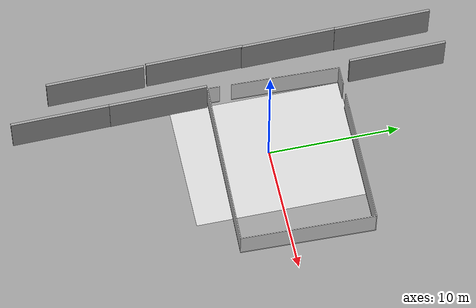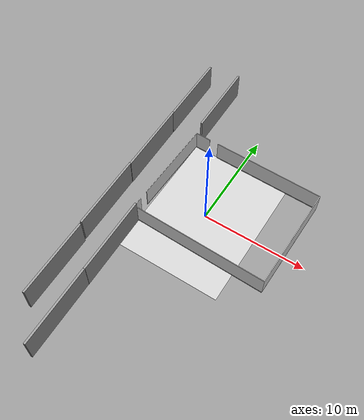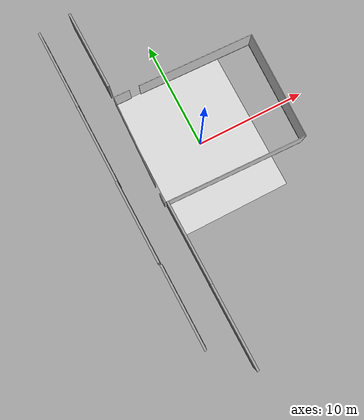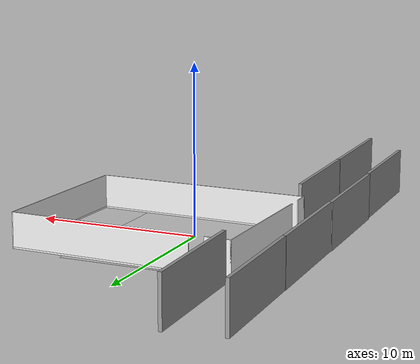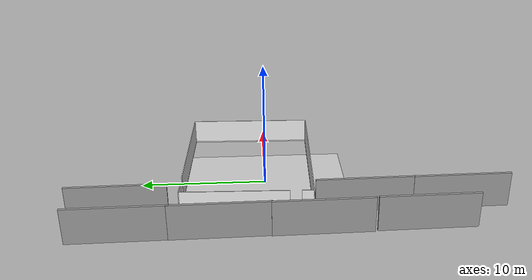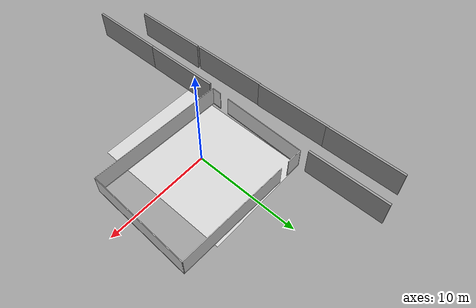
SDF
<sdf version="1.7">
 <world name="default">
  <gravity>0 0 -9.8</gravity>
  <magnetic_field>6e-06 2.3e-05 -4.2e-05</magnetic_field>
  <atmosphere type="adiabatic"/>
  <physics type="ode">
   <max_step_size>0.001</max_step_size>
   <real_time_factor>1</real_time_factor>
   <real_time_update_rate>1000</real_time_update_rate>
  </physics>
  <scene><ambient>0.4 0.4 0.4 1</ambient><background>0.7 0.7 0.7 1</background><shadows>1</shadows></scene>
  <spherical_coordinates>
   <surface_model>EARTH_WGS84</surface_model>
   <latitude_deg>0</latitude_deg>
   <longitude_deg>0</longitude_deg>
   <elevation>0</elevation>
   <heading_deg>0</heading_deg>
  </spherical_coordinates>
  <model name="gplane">
   <link name="body">
    <collision name="gplane_coll">
     <geometry><plane><normal>0 0 1</normal><size>10.075 13.18</size></plane></geometry>
     <surface><contact><ode><kp>1e+06</kp><kd>1</kd></ode></contact></surface>
     <laser_retro>2000</laser_retro>
    </collision>
    <visual name="gplane_vis">
     <geometry><plane><normal>0 0 1</normal><size>10.075 13.18</size></plane></geometry>
     <material>
      <script>
       <uri>model://base_materials/carpet/scripts</uri>
       <uri>model://base_materials/carpet/textures</uri>
       <name>carpet/carpet01</name>
      </script>
     </material>
     <cast_shadows>0</cast_shadows>
    </visual>
    <velocity_decay><linear>0</linear><angular>0</angular></velocity_decay>
   </link>
   <static>1</static>
  </model>
  <light name="inner_point_white1" type="point">
   <pose>4 5 4 0 -0 0</pose>
   <diffuse>0.2 0.2 0.2 1</diffuse>
   <specular>0.1 0.1 0.1 1</specular>
   <attenuation>
    <range>20</range>
    <linear>0.1</linear>
    <constant>0.2</constant>
    <quadratic>0</quadratic>
   </attenuation>
   <cast_shadows>0</cast_shadows>
   <direction>0 0 -1</direction>
   <spot><inner_angle>0</inner_angle><outer_angle>0</outer_angle><falloff>0</falloff></spot>
  </light>
  <light name="inner_point_white2" type="point">
   <pose>4 10 4 0 -0 0</pose>
   <diffuse>0.2 0.2 0.2 1</diffuse>
   <specular>0.1 0.1 0.1 1</specular>
   <attenuation>
    <range>20</range>
    <linear>0.1</linear>
    <constant>0.2</constant>
    <quadratic>0</quadratic>
   </attenuation>
   <cast_shadows>0</cast_shadows>
   <direction>0 0 -1</direction>
   <spot><inner_angle>0</inner_angle><outer_angle>0</outer_angle><falloff>0</falloff></spot>
  </light>
  <light name="inner_point_white3" type="point">
   <pose>8 5 4 0 -0 0</pose>
   <diffuse>0.2 0.2 0.2 1</diffuse>
   <specular>0.1 0.1 0.1 1</specular>
   <attenuation>
    <range>20</range>
    <linear>0.1</linear>
    <constant>0.2</constant>
    <quadratic>0</quadratic>
   </attenuation>
   <cast_shadows>0</cast_shadows>
   <direction>0 0 -1</direction>
   <spot><inner_angle>0</inner_angle><outer_angle>0</outer_angle><falloff>0</falloff></spot>
  </light>
  <light name="inner_point_white4" type="point">
   <pose>8 10 4 0 -0 0</pose>
   <diffuse>0.2 0.2 0.2 1</diffuse>
   <specular>0.1 0.1 0.1 1</specular>
   <attenuation>
    <range>20</range>
    <linear>0.1</linear>
    <constant>0.2</constant>
    <quadratic>0</quadratic>
   </attenuation>
   <cast_shadows>0</cast_shadows>
   <direction>0 0 -1</direction>
   <spot><inner_angle>0</inner_angle><outer_angle>0</outer_angle><falloff>0</falloff></spot>
  </light>
  <light name="inner_point_white5" type="point">
   <pose>4 5 4 0 -0 0</pose>
   <diffuse>0.2 0.2 0.2 1</diffuse>
   <specular>0.1 0.1 0.1 1</specular>
   <attenuation>
    <range>20</range>
    <linear>0.1</linear>
    <constant>0.2</constant>
    <quadratic>0</quadratic>
   </attenuation>
   <cast_shadows>0</cast_shadows>
   <direction>0 0 -1</direction>
   <spot><inner_angle>0</inner_angle><outer_angle>0</outer_angle><falloff>0</falloff></spot>
  </light>
  <light name="inner_point_white6" type="point">
   <pose>4 10 4 0 -0 0</pose>
   <diffuse>0.2 0.2 0.2 1</diffuse>
   <specular>0.1 0.1 0.1 1</specular>
   <attenuation>
    <range>20</range>
    <linear>0.1</linear>
    <constant>0.2</constant>
    <quadratic>0</quadratic>
   </attenuation>
   <cast_shadows>0</cast_shadows>
   <direction>0 0 -1</direction>
   <spot><inner_angle>0</inner_angle><outer_angle>0</outer_angle><falloff>0</falloff></spot>
  </light>
  <light name="inner_point_white7" type="point">
   <pose>8 5 4 0 -0 0</pose>
   <diffuse>0.2 0.2 0.2 1</diffuse>
   <specular>0.1 0.1 0.1 1</specular>
   <attenuation>
    <range>20</range>
    <linear>0.1</linear>
    <constant>0.2</constant>
    <quadratic>0</quadratic>
   </attenuation>
   <cast_shadows>0</cast_shadows>
   <direction>0 0 -1</direction>
   <spot><inner_angle>0</inner_angle><outer_angle>0</outer_angle><falloff>0</falloff></spot>
  </light>
  <light name="inner_point_white8" type="point">
   <pose>8 10 4 0 -0 0</pose>
   <diffuse>0.2 0.2 0.2 1</diffuse>
   <specular>0.1 0.1 0.1 1</specular>
   <attenuation>
    <range>20</range>
    <linear>0.1</linear>
    <constant>0.2</constant>
    <quadratic>0</quadratic>
   </attenuation>
   <cast_shadows>0</cast_shadows>
   <direction>0 0 -1</direction>
   <spot><inner_angle>0</inner_angle><outer_angle>0</outer_angle><falloff>0</falloff></spot>
  </light>
  <model name="full_outside_wall">
   <link name="link">
    <inertial>
     <mass>50</mass>
     <inertia><ixx>1</ixx><ixy>0</ixy><ixz>0</ixz><iyy>1</iyy><iyz>0</iyz><izz>1</izz></inertia>
    </inertial>
    <visual name="x00_13y00_bottom_frame">
     <pose>5.0375 -0.0275 0.05 0 -0 0</pose>
     <geometry><box><size>10.185 0.055 0.1</size></box></geometry>
     <material>
      <script><uri>model://base_materials/color/scripts</uri><name>hsr_color/white</name></script>
     </material>
    </visual>
    <collision name="x00_13y00_collision_bottom_frame">
     <pose>5.0375 -0.0275 0.05 0 -0 0</pose>
     <geometry><box><size>10.185 0.055 0.1</size></box></geometry>
    </collision>
    <visual name="wall_x00_13y00">
     <pose>5.0375 -0.0275 1.095 0 -0 0</pose>
     <geometry><box><size>10.185 0.055 1.99</size></box></geometry>
     <material>
      <script>
       <uri>model://base_materials/wall/scripts</uri>
       <uri>model://base_materials/wall/textures</uri>
       <name>wall/white_noise</name>
      </script>
     </material>
    </visual>
    <collision name="wall_x00_13y00">
     <pose>5.0375 -0.002 1.095 0 -0 0</pose>
     <geometry><box><size>10.08 0.055 1.99</size></box></geometry>
    </collision>
    <visual name="x00y00_15_bottom_frame">
     <pose>-0.0275 6.59 0.05 0 -0 0</pose>
     <geometry><box><size>0.055 13.29 0.1</size></box></geometry>
     <material>
      <script><uri>model://base_materials/color/scripts</uri><name>hsr_color/white</name></script>
     </material>
    </visual>
    <collision name="x00y00_15_collision_bottom_frame">
     <pose>-0.0275 6.59 0.05 0 -0 0</pose>
     <geometry><box><size>0.055 13.29 0.1</size></box></geometry>
    </collision>
    <visual name="wall_x00y00_15">
     <pose>-0.0275 6.59 1.095 0 -0 0</pose>
     <geometry><box><size>0.055 13.29 1.99</size></box></geometry>
     <material>
      <script>
       <uri>model://base_materials/wall/scripts</uri>
       <uri>model://base_materials/wall/textures</uri>
       <name>wall/white_noise</name>
      </script>
     </material>
    </visual>
    <collision name="wall_x00y00_x00y15">
     <pose>-0.002 6.59 1.095 0 -0 0</pose>
     <geometry><box><size>0.002 13.29 1.99</size></box></geometry>
    </collision>
    <visual name="x13y00_12_bottom_frame">
     <pose>10.1025 5.3725 0.05 0 -0 0</pose>
     <geometry><box><size>0.055 10.855 0.1</size></box></geometry>
     <material>
      <script><uri>model://base_materials/color/scripts</uri><name>hsr_color/white</name></script>
     </material>
    </visual>
    <collision name="x13y00_12_collision_bottom_frame">
     <pose>10.1025 5.3725 0.05 0 -0 0</pose>
     <geometry><box><size>0.055 10.855 0.1</size></box></geometry>
    </collision>
    <visual name="wall_x13y00_12">
     <pose>10.1025 5.3725 1.095 0 -0 0</pose>
     <geometry><box><size>0.055 10.855 1.99</size></box></geometry>
     <material>
      <script>
       <uri>model://base_materials/wall/scripts</uri>
       <uri>model://base_materials/wall/textures</uri>
       <name>wall/white_noise</name>
      </script>
     </material>
    </visual>
    <collision name="wall_x13y00_12">
     <pose>10.1025 5.3725 1.095 0 -0 0</pose>
     <geometry><box><size>0.055 10.855 1.99</size></box></geometry>
    </collision>
    <visual name="x13y14_16_bottom_frame">
     <pose>10.1025 12.4675 0.05 0 -0 0</pose>
     <geometry><box><size>0.055 1.535 0.1</size></box></geometry>
     <material>
      <script><uri>model://base_materials/color/scripts</uri><name>hsr_color/white</name></script>
     </material>
    </visual>
    <collision name="x13y14_16_collision_bottom_frame">
     <pose>10.1025 12.4675 0.05 0 -0 0</pose>
     <geometry><box><size>0.055 1.535 0.1</size></box></geometry>
    </collision>
    <visual name="wall_x13y14_x13y16">
     <pose>10.1025 12.4675 1.095 0 -0 0</pose>
     <geometry><box><size>0.055 1.535 1.99</size></box></geometry>
     <material>
      <script>
       <uri>model://base_materials/wall/scripts</uri>
       <uri>model://base_materials/wall/textures</uri>
       <name>wall/white_noise</name>
      </script>
     </material>
    </visual>
    <collision name="wall_x13y14_x13y16">
     <pose>10.1025 12.4675 1.095 0 -0 0</pose>
     <geometry><box><size>0.055 1.535 1.99</size></box></geometry>
    </collision>
    <visual name="x00_01y16_bottom_frame">
     <pose>0.4225 13.2075 0.05 0 -0 0</pose>
     <geometry><box><size>0.955 0.055 0.1</size></box></geometry>
     <material>
      <script><uri>model://base_materials/color/scripts</uri><name>hsr_color/white</name></script>
     </material>
    </visual>
    <collision name="x00_01y16_collision_bottom_frame">
     <pose>0.4225 13.2075 0.05 0 -0 0</pose>
     <geometry><box><size>0.955 0.055 0.1</size></box></geometry>
    </collision>
    <visual name="wall_x00_01y16">
     <pose>0.4225 13.2075 1.095 0 -0 0</pose>
     <geometry><box><size>0.955 0.055 1.99</size></box></geometry>
     <material>
      <script>
       <uri>model://base_materials/wall/scripts</uri>
       <uri>model://base_materials/wall/textures</uri>
       <name>wall/white_noise</name>
      </script>
     </material>
    </visual>
    <collision name="wall_x00_x01y16">
     <pose>0.4225 13.2075 1.095 0 -0 0</pose>
     <geometry><box><size>0.955 0.055 1.99</size></box></geometry>
    </collision>
    <visual name="x03_13y16_bottom_frame">
     <pose>5.965 13.2075 0.05 0 -0 0</pose>
     <geometry><box><size>8.33 0.05 0.1</size></box></geometry>
     <material>
      <script><uri>model://base_materials/color/scripts</uri><name>hsr_color/white</name></script>
     </material>
    </visual>
    <collision name="x03_13y16_collision_bottom_frame">
     <pose>5.965 13.2075 0.05 0 -0 0</pose>
     <geometry><box><size>8.33 0.05 0.1</size></box></geometry>
    </collision>
    <visual name="wall_x03_13y16">
     <pose>5.965 13.2075 1.095 0 -0 0</pose>
     <geometry><box><size>8.33 0.055 1.99</size></box></geometry>
     <material>
      <script>
       <uri>model://base_materials/wall/scripts</uri>
       <uri>model://base_materials/wall/textures</uri>
       <name>wall/white_noise</name>
      </script>
     </material>
    </visual>
    <collision name="wall_x03_13y16">
     <pose>5.965 13.2075 1.095 0 -0 0</pose>
     <geometry><box><size>8.33 0.055 1.99</size></box></geometry>
    </collision>
    <velocity_decay><linear>0</linear><angular>0</angular></velocity_decay>
   </link>
   <static>1</static>
   <pose>7.92201 -3.87152 0 0 -0 1.546</pose>
  </model>
  <model name="grey_wall">
   <static>1</static>
   <link name="link">
    <pose>0 0 1.4 0 -0 0</pose>
    <collision name="collision"><geometry><box><size>7.5 0.2 2.8</size></box></geometry></collision>
    <visual name="visual">
     <cast_shadows>0</cast_shadows>
     <geometry><box><size>7.5 0.2 2.8</size></box></geometry>
     <material>
      <script>
       <uri>model://grey_wall/materials/scripts</uri>
       <uri>model://grey_wall/materials/textures</uri>
       <name>vrc/grey_wall</name>
      </script>
     </material>
    </visual>
   </link>
   <pose>-7.94973 -4.03116 0 0 0 -1.55264</pose>
  </model>
  <model name="grey_wall_clone">
   <static>1</static>
   <link name="link">
    <pose>0 0 1.4 0 -0 0</pose>
    <collision name="collision"><geometry><box><size>7.5 0.2 2.8</size></box></geometry></collision>
    <visual name="visual">
     <cast_shadows>0</cast_shadows>
     <geometry><box><size>7.5 0.2 2.8</size></box></geometry>
     <material>
      <script>
       <uri>model://grey_wall/materials/scripts</uri>
       <uri>model://grey_wall/materials/textures</uri>
       <name>vrc/grey_wall</name>
      </script>
     </material>
    </visual>
   </link>
   <pose>-4.96194 -7.41741 0 0 0 -1.55264</pose>
  </model>
  <model name="grey_wall_clone_0">
   <static>1</static>
   <link name="link">
    <pose>0 0 1.4 0 -0 0</pose>
    <collision name="collision"><geometry><box><size>7.5 0.2 2.8</size></box></geometry></collision>
    <visual name="visual">
     <cast_shadows>0</cast_shadows>
     <geometry><box><size>7.5 0.2 2.8</size></box></geometry>
     <material>
      <script>
       <uri>model://grey_wall/materials/scripts</uri>
       <uri>model://grey_wall/materials/textures</uri>
       <name>vrc/grey_wall</name>
      </script>
     </material>
    </visual>
   </link>
   <pose>-7.73628 -11.7083 0 0 0 -1.55264</pose>
  </model>
  <model name="grey_wall_clone_1">
   <static>1</static>
   <link name="link">
    <pose>0 0 1.4 0 -0 0</pose>
    <collision name="collision"><geometry><box><size>7.5 0.2 2.8</size></box></geometry></collision>
    <visual name="visual">
     <cast_shadows>0</cast_shadows>
     <geometry><box><size>7.5 0.2 2.8</size></box></geometry>
     <material>
      <script>
       <uri>model://grey_wall/materials/scripts</uri>
       <uri>model://grey_wall/materials/textures</uri>
       <name>vrc/grey_wall</name>
      </script>
     </material>
    </visual>
   </link>
   <pose>-8.04012 3.36213 0 0 0 -1.55264</pose>
  </model>
  <model name="grey_wall_clone_2">
   <static>1</static>
   <link name="link">
    <pose>0 0 1.4 0 -0 0</pose>
    <collision name="collision"><geometry><box><size>7.5 0.2 2.8</size></box></geometry></collision>
    <visual name="visual">
     <cast_shadows>0</cast_shadows>
     <geometry><box><size>7.5 0.2 2.8</size></box></geometry>
     <material>
      <script>
       <uri>model://grey_wall/materials/scripts</uri>
       <uri>model://grey_wall/materials/textures</uri>
       <name>vrc/grey_wall</name>
      </script>
     </material>
    </visual>
   </link>
   <pose>-8.15545 10.6469 0 0 0 -1.55264</pose>
  </model>
  <model name="grey_wall_clone_3">
   <static>1</static>
   <link name="link">
    <pose>0 0 1.4 0 -0 0</pose>
    <collision name="collision"><geometry><box><size>7.5 0.2 2.8</size></box></geometry></collision>
    <visual name="visual">
     <cast_shadows>0</cast_shadows>
     <geometry><box><size>7.5 0.2 2.8</size></box></geometry>
     <material>
      <script>
       <uri>model://grey_wall/materials/scripts</uri>
       <uri>model://grey_wall/materials/textures</uri>
       <name>vrc/grey_wall</name>
      </script>
     </material>
    </visual>
   </link>
   <pose>-5.0761 11.0936 0 0 0 -1.55264</pose>
  </model>
  <model name="grey_wall_clone_4">
   <static>1</static>
   <link name="link">
    <pose>0 0 1.4 0 -0 0</pose>
    <collision name="collision"><geometry><box><size>7.5 0.2 2.8</size></box></geometry></collision>
    <visual name="visual">
     <cast_shadows>0</cast_shadows>
     <geometry><box><size>7.5 0.2 2.8</size></box></geometry>
     <material>
      <script>
       <uri>model://grey_wall/materials/scripts</uri>
       <uri>model://grey_wall/materials/textures</uri>
       <name>vrc/grey_wall</name>
      </script>
     </material>
    </visual>
   </link>
   <pose>-4.83884 -14.8961 0 0 0 -1.55264</pose>
  </model>
 </world>
</sdf>
